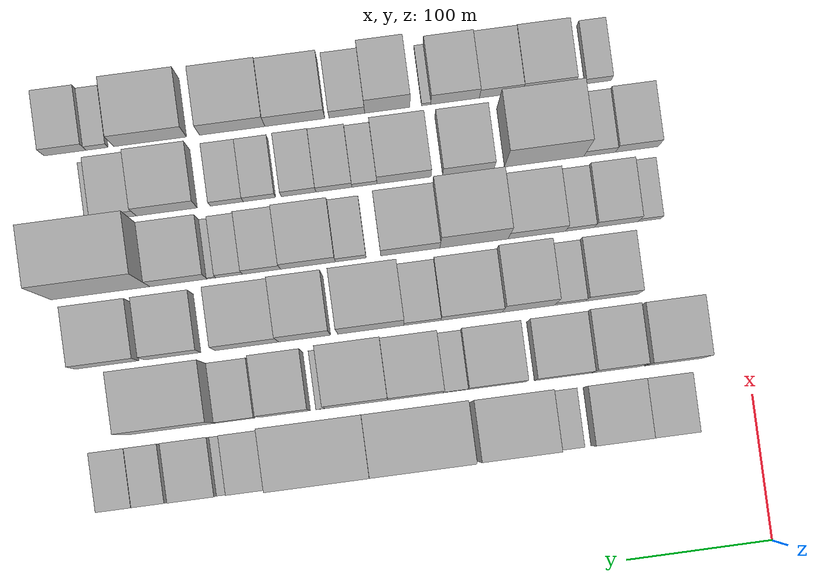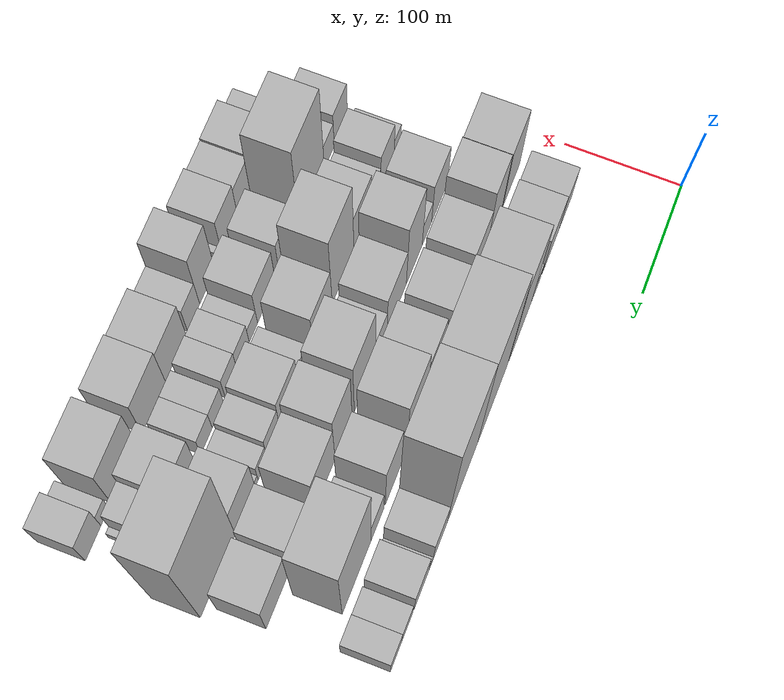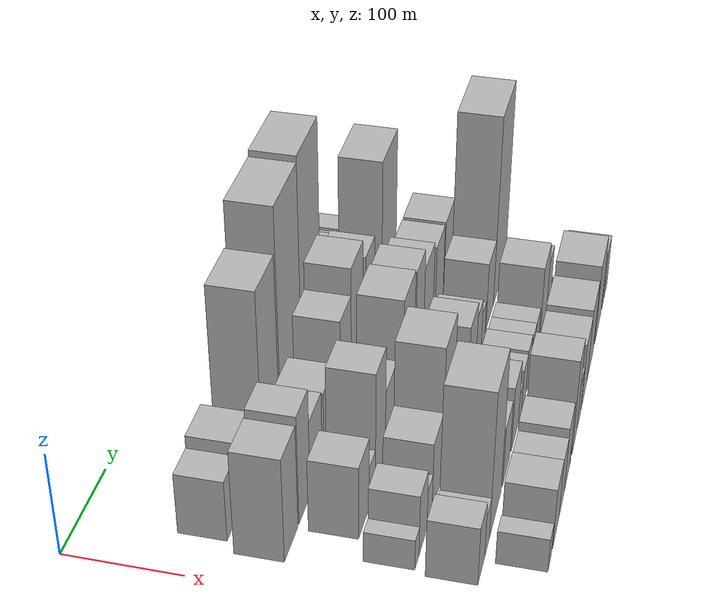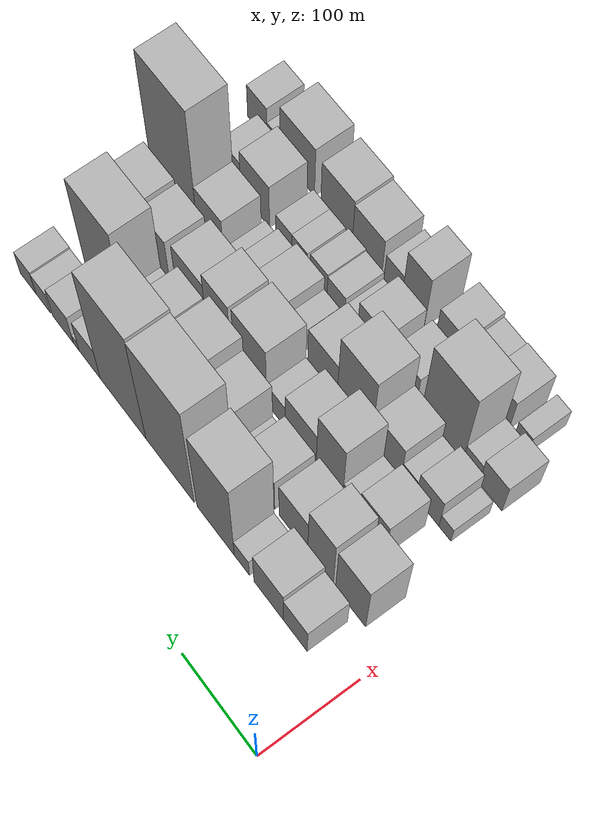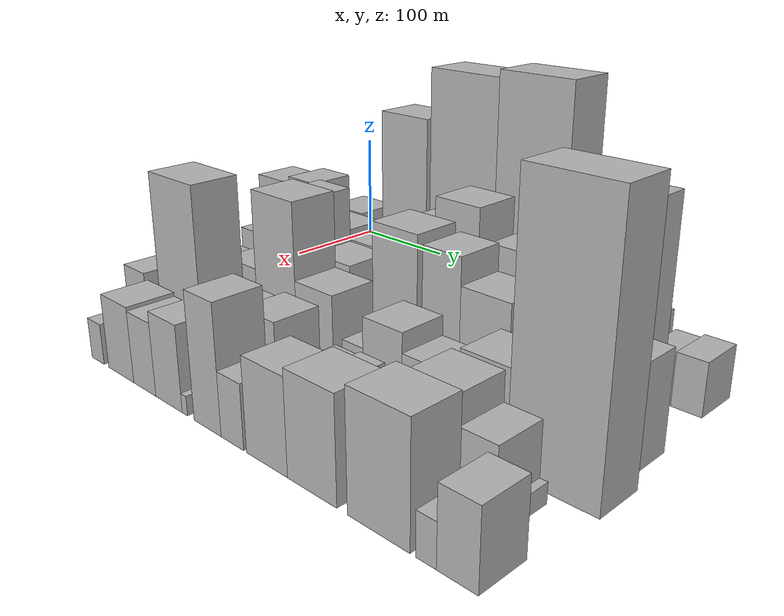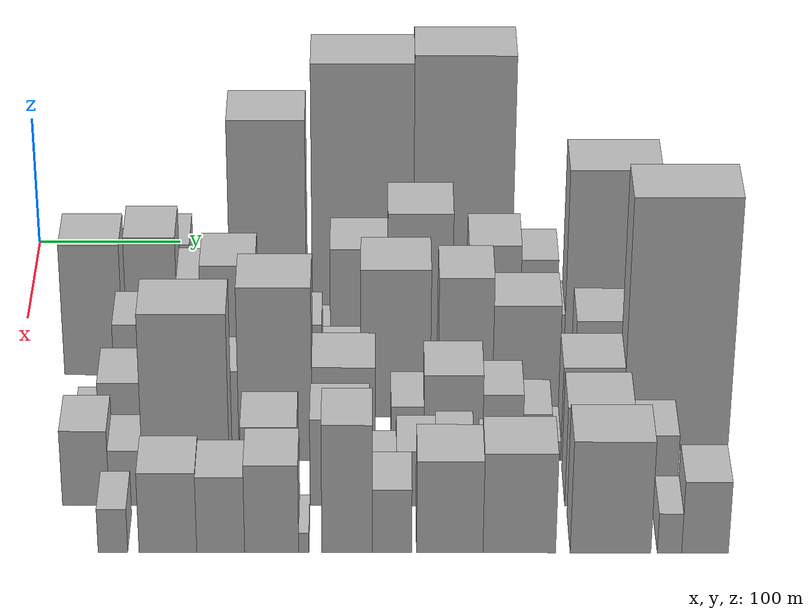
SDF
<sdf version="1.6">
 <world name="default">
  <model name="building_22">
   <static>1</static>
   <pose>100.0000 58.4036 0 0.000000 0.000000 0.000000</pose>
   <link name="link">
    <pose>0 0 30.00 0 0 0</pose>
    <collision name="collision"><geometry><box><size>40.0000 31.4197 60.0000</size></box></geometry></collision>
    <visual name="visual">
     <cast_shadows>0</cast_shadows>
     <geometry><box><size>40.0000 31.4197 60.0000</size></box></geometry>
     <material>
      <script>
       <uri>model://HANNAS_wall/materials/scripts</uri>
       <uri>model://HANNAS_wall/materials/textures</uri>
       <name>vrc/HANNAS_wall</name>
      </script>
     </material>
    </visual>
   </link>
  </model>
  <model name="building_23">
   <static>1</static>
   <pose>100.0000 93.8750 0 0.000000 0.000000 0.000000</pose>
   <link name="link">
    <pose>0 0 36.00 0 0 0</pose>
    <collision name="collision"><geometry><box><size>40.0000 39.5232 72.0000</size></box></geometry></collision>
    <visual name="visual">
     <cast_shadows>0</cast_shadows>
     <geometry><box><size>40.0000 39.5232 72.0000</size></box></geometry>
     <material>
      <script>
       <uri>model://HANNAS_wall/materials/scripts</uri>
       <uri>model://HANNAS_wall/materials/textures</uri>
       <name>vrc/HANNAS_wall</name>
      </script>
     </material>
    </visual>
   </link>
  </model>
  <model name="building_24">
   <static>1</static>
   <pose>100.0000 129.8729 0 0.000000 0.000000 0.000000</pose>
   <link name="link">
    <pose>0 0 19.50 0 0 0</pose>
    <collision name="collision"><geometry><box><size>40.0000 20.4726 39.0000</size></box></geometry></collision>
    <visual name="visual">
     <cast_shadows>0</cast_shadows>
     <geometry><box><size>40.0000 20.4726 39.0000</size></box></geometry>
     <material>
      <script>
       <uri>model://HANNAS_wall/materials/scripts</uri>
       <uri>model://HANNAS_wall/materials/textures</uri>
       <name>vrc/HANNAS_wall</name>
      </script>
     </material>
    </visual>
   </link>
  </model>
  <model name="building_25">
   <static>1</static>
   <pose>100.0000 165.9159 0 0.000000 0.000000 0.000000</pose>
   <link name="link">
    <pose>0 0 84.00 0 0 0</pose>
    <collision name="collision"><geometry><box><size>40.0000 51.6133 168.0000</size></box></geometry></collision>
    <visual name="visual">
     <cast_shadows>0</cast_shadows>
     <geometry><box><size>40.0000 51.6133 168.0000</size></box></geometry>
     <material>
      <script>
       <uri>model://HANNAS_wall/materials/scripts</uri>
       <uri>model://HANNAS_wall/materials/textures</uri>
       <name>vrc/HANNAS_wall</name>
      </script>
     </material>
    </visual>
   </link>
  </model>
  <model name="building_26">
   <static>1</static>
   <pose>100.0000 229.7220 0 0.000000 0.000000 0.000000</pose>
   <link name="link">
    <pose>0 0 105.00 0 0 0</pose>
    <collision name="collision"><geometry><box><size>40.0000 67.9990 210.0000</size></box></geometry></collision>
    <visual name="visual">
     <cast_shadows>0</cast_shadows>
     <geometry><box><size>40.0000 67.9990 210.0000</size></box></geometry>
     <material>
      <script>
       <uri>model://HANNAS_wall/materials/scripts</uri>
       <uri>model://HANNAS_wall/materials/textures</uri>
       <name>vrc/HANNAS_wall</name>
      </script>
     </material>
    </visual>
   </link>
  </model>
  <model name="building_27">
   <static>1</static>
   <pose>100.0000 296.9194 0 0.000000 0.000000 0.000000</pose>
   <link name="link">
    <pose>0 0 108.00 0 0 0</pose>
    <collision name="collision"><geometry><box><size>40.0000 66.3957 216.0000</size></box></geometry></collision>
    <visual name="visual">
     <cast_shadows>0</cast_shadows>
     <geometry><box><size>40.0000 66.3957 216.0000</size></box></geometry>
     <material>
      <script>
       <uri>model://HANNAS_wall/materials/scripts</uri>
       <uri>model://HANNAS_wall/materials/textures</uri>
       <name>vrc/HANNAS_wall</name>
      </script>
     </material>
    </visual>
   </link>
  </model>
  <model name="building_28">
   <static>1</static>
   <pose>100.0000 345.7990 0 0.000000 0.000000 0.000000</pose>
   <link name="link">
    <pose>0 0 30.00 0 0 0</pose>
    <collision name="collision"><geometry><box><size>40.0000 31.3636 60.0000</size></box></geometry></collision>
    <visual name="visual">
     <cast_shadows>0</cast_shadows>
     <geometry><box><size>40.0000 31.3636 60.0000</size></box></geometry>
     <material>
      <script>
       <uri>model://HANNAS_wall/materials/scripts</uri>
       <uri>model://HANNAS_wall/materials/textures</uri>
       <name>vrc/HANNAS_wall</name>
      </script>
     </material>
    </visual>
   </link>
  </model>
  <model name="building_29">
   <static>1</static>
   <pose>100.0000 365.5099 0 0.000000 0.000000 0.000000</pose>
   <link name="link">
    <pose>0 0 9.00 0 0 0</pose>
    <collision name="collision"><geometry><box><size>40.0000 8.0583 18.0000</size></box></geometry></collision>
    <visual name="visual">
     <cast_shadows>0</cast_shadows>
     <geometry><box><size>40.0000 8.0583 18.0000</size></box></geometry>
     <material>
      <script>
       <uri>model://HANNAS_wall/materials/scripts</uri>
       <uri>model://HANNAS_wall/materials/textures</uri>
       <name>vrc/HANNAS_wall</name>
      </script>
     </material>
    </visual>
   </link>
  </model>
  <model name="building_30">
   <static>1</static>
   <pose>100.0000 385.2607 0 0.000000 0.000000 0.000000</pose>
   <link name="link">
    <pose>0 0 27.00 0 0 0</pose>
    <collision name="collision"><geometry><box><size>40.0000 31.4432 54.0000</size></box></geometry></collision>
    <visual name="visual">
     <cast_shadows>0</cast_shadows>
     <geometry><box><size>40.0000 31.4432 54.0000</size></box></geometry>
     <material>
      <script>
       <uri>model://HANNAS_wall/materials/scripts</uri>
       <uri>model://HANNAS_wall/materials/textures</uri>
       <name>vrc/HANNAS_wall</name>
      </script>
     </material>
    </visual>
   </link>
  </model>
  <model name="building_31">
   <static>1</static>
   <pose>100.0000 415.1089 0 0.000000 0.000000 0.000000</pose>
   <link name="link">
    <pose>0 0 19.50 0 0 0</pose>
    <collision name="collision"><geometry><box><size>40.0000 22.2534 39.0000</size></box></geometry></collision>
    <visual name="visual">
     <cast_shadows>0</cast_shadows>
     <geometry><box><size>40.0000 22.2534 39.0000</size></box></geometry>
     <material>
      <script>
       <uri>model://HANNAS_wall/materials/scripts</uri>
       <uri>model://HANNAS_wall/materials/textures</uri>
       <name>vrc/HANNAS_wall</name>
      </script>
     </material>
    </visual>
   </link>
  </model>
  <model name="building_32">
   <static>1</static>
   <pose>100.0000 438.1735 0 0.000000 0.000000 0.000000</pose>
   <link name="link">
    <pose>0 0 21.00 0 0 0</pose>
    <collision name="collision"><geometry><box><size>40.0000 23.8757 42.0000</size></box></geometry></collision>
    <visual name="visual">
     <cast_shadows>0</cast_shadows>
     <geometry><box><size>40.0000 23.8757 42.0000</size></box></geometry>
     <material>
      <script>
       <uri>model://HANNAS_wall/materials/scripts</uri>
       <uri>model://HANNAS_wall/materials/textures</uri>
       <name>vrc/HANNAS_wall</name>
      </script>
     </material>
    </visual>
   </link>
  </model>
  <model name="building_67">
   <static>1</static>
   <pose>149.0000 50.6303 0 0.000000 0.000000 0.000000</pose>
   <link name="link">
    <pose>0 0 51.00 0 0 0</pose>
    <collision name="collision"><geometry><box><size>40.0000 39.5652 102.0000</size></box></geometry></collision>
    <visual name="visual">
     <cast_shadows>0</cast_shadows>
     <geometry><box><size>40.0000 39.5652 102.0000</size></box></geometry>
     <material>
      <script>
       <uri>model://HANNAS_wall/materials/scripts</uri>
       <uri>model://HANNAS_wall/materials/textures</uri>
       <name>vrc/HANNAS_wall</name>
      </script>
     </material>
    </visual>
   </link>
  </model>
  <model name="building_68">
   <static>1</static>
   <pose>149.0000 90.3499 0 0.000000 0.000000 0.000000</pose>
   <link name="link">
    <pose>0 0 54.00 0 0 0</pose>
    <collision name="collision"><geometry><box><size>40.0000 33.8740 108.0000</size></box></geometry></collision>
    <visual name="visual">
     <cast_shadows>0</cast_shadows>
     <geometry><box><size>40.0000 33.8740 108.0000</size></box></geometry>
     <material>
      <script>
       <uri>model://HANNAS_wall/materials/scripts</uri>
       <uri>model://HANNAS_wall/materials/textures</uri>
       <name>vrc/HANNAS_wall</name>
      </script>
     </material>
    </visual>
   </link>
  </model>
  <model name="building_69">
   <static>1</static>
   <pose>149.0000 126.5939 0 0.000000 0.000000 0.000000</pose>
   <link name="link">
    <pose>0 0 37.50 0 0 0</pose>
    <collision name="collision"><geometry><box><size>40.0000 38.6140 75.0000</size></box></geometry></collision>
    <visual name="visual">
     <cast_shadows>0</cast_shadows>
     <geometry><box><size>40.0000 38.6140 75.0000</size></box></geometry>
     <material>
      <script>
       <uri>model://HANNAS_wall/materials/scripts</uri>
       <uri>model://HANNAS_wall/materials/textures</uri>
       <name>vrc/HANNAS_wall</name>
      </script>
     </material>
    </visual>
   </link>
  </model>
  <model name="building_70">
   <static>1</static>
   <pose>149.0000 171.7424 0 0.000000 0.000000 0.000000</pose>
   <link name="link">
    <pose>0 0 34.50 0 0 0</pose>
    <collision name="collision"><geometry><box><size>40.0000 39.6831 69.0000</size></box></geometry></collision>
    <visual name="visual">
     <cast_shadows>0</cast_shadows>
     <geometry><box><size>40.0000 39.6831 69.0000</size></box></geometry>
     <material>
      <script>
       <uri>model://HANNAS_wall/materials/scripts</uri>
       <uri>model://HANNAS_wall/materials/textures</uri>
       <name>vrc/HANNAS_wall</name>
      </script>
     </material>
    </visual>
   </link>
  </model>
  <model name="building_71">
   <static>1</static>
   <pose>149.0000 200.0112 0 0.000000 0.000000 0.000000</pose>
   <link name="link">
    <pose>0 0 15.00 0 0 0</pose>
    <collision name="collision"><geometry><box><size>40.0000 16.8546 30.0000</size></box></geometry></collision>
    <visual name="visual">
     <cast_shadows>0</cast_shadows>
     <geometry><box><size>40.0000 16.8546 30.0000</size></box></geometry>
     <material>
      <script>
       <uri>model://HANNAS_wall/materials/scripts</uri>
       <uri>model://HANNAS_wall/materials/textures</uri>
       <name>vrc/HANNAS_wall</name>
      </script>
     </material>
    </visual>
   </link>
  </model>
  <model name="building_72">
   <static>1</static>
   <pose>149.0000 227.3875 0 0.000000 0.000000 0.000000</pose>
   <link name="link">
    <pose>0 0 49.50 0 0 0</pose>
    <collision name="collision"><geometry><box><size>40.0000 37.8979 99.0000</size></box></geometry></collision>
    <visual name="visual">
     <cast_shadows>0</cast_shadows>
     <geometry><box><size>40.0000 37.8979 99.0000</size></box></geometry>
     <material>
      <script>
       <uri>model://HANNAS_wall/materials/scripts</uri>
       <uri>model://HANNAS_wall/materials/textures</uri>
       <name>vrc/HANNAS_wall</name>
      </script>
     </material>
    </visual>
   </link>
  </model>
  <model name="building_73">
   <static>1</static>
   <pose>149.0000 267.7752 0 0.000000 0.000000 0.000000</pose>
   <link name="link">
    <pose>0 0 63.00 0 0 0</pose>
    <collision name="collision"><geometry><box><size>40.0000 42.8776 126.0000</size></box></geometry></collision>
    <visual name="visual">
     <cast_shadows>0</cast_shadows>
     <geometry><box><size>40.0000 42.8776 126.0000</size></box></geometry>
     <material>
      <script>
       <uri>model://HANNAS_wall/materials/scripts</uri>
       <uri>model://HANNAS_wall/materials/textures</uri>
       <name>vrc/HANNAS_wall</name>
      </script>
     </material>
    </visual>
   </link>
  </model>
  <model name="building_74">
   <static>1</static>
   <pose>149.0000 292.3675 0 0.000000 0.000000 0.000000</pose>
   <link name="link">
    <pose>0 0 7.50 0 0 0</pose>
    <collision name="collision"><geometry><box><size>40.0000 6.3072 15.0000</size></box></geometry></collision>
    <visual name="visual">
     <cast_shadows>0</cast_shadows>
     <geometry><box><size>40.0000 6.3072 15.0000</size></box></geometry>
     <material>
      <script>
       <uri>model://HANNAS_wall/materials/scripts</uri>
       <uri>model://HANNAS_wall/materials/textures</uri>
       <name>vrc/HANNAS_wall</name>
      </script>
     </material>
    </visual>
   </link>
  </model>
  <model name="building_75">
   <static>1</static>
   <pose>149.0000 316.7669 0 0.000000 0.000000 0.000000</pose>
   <link name="link">
    <pose>0 0 51.00 0 0 0</pose>
    <collision name="collision"><geometry><box><size>40.0000 34.4916 102.0000</size></box></geometry></collision>
    <visual name="visual">
     <cast_shadows>0</cast_shadows>
     <geometry><box><size>40.0000 34.4916 102.0000</size></box></geometry>
     <material>
      <script>
       <uri>model://HANNAS_wall/materials/scripts</uri>
       <uri>model://HANNAS_wall/materials/textures</uri>
       <name>vrc/HANNAS_wall</name>
      </script>
     </material>
    </visual>
   </link>
  </model>
  <model name="building_76">
   <static>1</static>
   <pose>149.0000 350.3776 0 0.000000 0.000000 0.000000</pose>
   <link name="link">
    <pose>0 0 24.00 0 0 0</pose>
    <collision name="collision"><geometry><box><size>40.0000 26.7299 48.0000</size></box></geometry></collision>
    <visual name="visual">
     <cast_shadows>0</cast_shadows>
     <geometry><box><size>40.0000 26.7299 48.0000</size></box></geometry>
     <material>
      <script>
       <uri>model://HANNAS_wall/materials/scripts</uri>
       <uri>model://HANNAS_wall/materials/textures</uri>
       <name>vrc/HANNAS_wall</name>
      </script>
     </material>
    </visual>
   </link>
  </model>
  <model name="building_77">
   <static>1</static>
   <pose>149.0000 393.6172 0 0.000000 0.000000 0.000000</pose>
   <link name="link">
    <pose>0 0 79.50 0 0 0</pose>
    <collision name="collision"><geometry><box><size>40.0000 59.7492 159.0000</size></box></geometry></collision>
    <visual name="visual">
     <cast_shadows>0</cast_shadows>
     <geometry><box><size>40.0000 59.7492 159.0000</size></box></geometry>
     <material>
      <script>
       <uri>model://HANNAS_wall/materials/scripts</uri>
       <uri>model://HANNAS_wall/materials/textures</uri>
       <name>vrc/HANNAS_wall</name>
      </script>
     </material>
    </visual>
   </link>
  </model>
  <model name="building_110">
   <static>1</static>
   <pose>198.0000 86.2267 0 0.000000 0.000000 0.000000</pose>
   <link name="link">
    <pose>0 0 36.00 0 0 0</pose>
    <collision name="collision"><geometry><box><size>40.0000 36.2347 72.0000</size></box></geometry></collision>
    <visual name="visual">
     <cast_shadows>0</cast_shadows>
     <geometry><box><size>40.0000 36.2347 72.0000</size></box></geometry>
     <material>
      <script>
       <uri>model://HANNAS_wall/materials/scripts</uri>
       <uri>model://HANNAS_wall/materials/textures</uri>
       <name>vrc/HANNAS_wall</name>
      </script>
     </material>
    </visual>
   </link>
  </model>
  <model name="building_111">
   <static>1</static>
   <pose>198.0000 115.0011 0 0.000000 0.000000 0.000000</pose>
   <link name="link">
    <pose>0 0 21.00 0 0 0</pose>
    <collision name="collision"><geometry><box><size>40.0000 21.3140 42.0000</size></box></geometry></collision>
    <visual name="visual">
     <cast_shadows>0</cast_shadows>
     <geometry><box><size>40.0000 21.3140 42.0000</size></box></geometry>
     <material>
      <script>
       <uri>model://HANNAS_wall/materials/scripts</uri>
       <uri>model://HANNAS_wall/materials/textures</uri>
       <name>vrc/HANNAS_wall</name>
      </script>
     </material>
    </visual>
   </link>
  </model>
  <model name="building_112">
   <static>1</static>
   <pose>198.0000 143.4820 0 0.000000 0.000000 0.000000</pose>
   <link name="link">
    <pose>0 0 58.50 0 0 0</pose>
    <collision name="collision"><geometry><box><size>40.0000 35.6478 117.0000</size></box></geometry></collision>
    <visual name="visual">
     <cast_shadows>0</cast_shadows>
     <geometry><box><size>40.0000 35.6478 117.0000</size></box></geometry>
     <material>
      <script>
       <uri>model://HANNAS_wall/materials/scripts</uri>
       <uri>model://HANNAS_wall/materials/textures</uri>
       <name>vrc/HANNAS_wall</name>
      </script>
     </material>
    </visual>
   </link>
  </model>
  <model name="building_113">
   <static>1</static>
   <pose>198.0000 182.4246 0 0.000000 0.000000 0.000000</pose>
   <link name="link">
    <pose>0 0 36.00 0 0 0</pose>
    <collision name="collision"><geometry><box><size>40.0000 42.2373 72.0000</size></box></geometry></collision>
    <visual name="visual">
     <cast_shadows>0</cast_shadows>
     <geometry><box><size>40.0000 42.2373 72.0000</size></box></geometry>
     <material>
      <script>
       <uri>model://HANNAS_wall/materials/scripts</uri>
       <uri>model://HANNAS_wall/materials/textures</uri>
       <name>vrc/HANNAS_wall</name>
      </script>
     </material>
    </visual>
   </link>
  </model>
  <model name="building_114">
   <static>1</static>
   <pose>198.0000 216.1688 0 0.000000 0.000000 0.000000</pose>
   <link name="link">
    <pose>0 0 22.50 0 0 0</pose>
    <collision name="collision"><geometry><box><size>40.0000 25.2511 45.0000</size></box></geometry></collision>
    <visual name="visual">
     <cast_shadows>0</cast_shadows>
     <geometry><box><size>40.0000 25.2511 45.0000</size></box></geometry>
     <material>
      <script>
       <uri>model://HANNAS_wall/materials/scripts</uri>
       <uri>model://HANNAS_wall/materials/textures</uri>
       <name>vrc/HANNAS_wall</name>
      </script>
     </material>
    </visual>
   </link>
  </model>
  <model name="building_115">
   <static>1</static>
   <pose>198.0000 251.4838 0 0.000000 0.000000 0.000000</pose>
   <link name="link">
    <pose>0 0 57.00 0 0 0</pose>
    <collision name="collision"><geometry><box><size>40.0000 45.3789 114.0000</size></box></geometry></collision>
    <visual name="visual">
     <cast_shadows>0</cast_shadows>
     <geometry><box><size>40.0000 45.3789 114.0000</size></box></geometry>
     <material>
      <script>
       <uri>model://HANNAS_wall/materials/scripts</uri>
       <uri>model://HANNAS_wall/materials/textures</uri>
       <name>vrc/HANNAS_wall</name>
      </script>
     </material>
    </visual>
   </link>
  </model>
  <model name="building_116">
   <static>1</static>
   <pose>198.0000 296.9703 0 0.000000 0.000000 0.000000</pose>
   <link name="link">
    <pose>0 0 54.00 0 0 0</pose>
    <collision name="collision"><geometry><box><size>40.0000 35.5942 108.0000</size></box></geometry></collision>
    <visual name="visual">
     <cast_shadows>0</cast_shadows>
     <geometry><box><size>40.0000 35.5942 108.0000</size></box></geometry>
     <material>
      <script>
       <uri>model://HANNAS_wall/materials/scripts</uri>
       <uri>model://HANNAS_wall/materials/textures</uri>
       <name>vrc/HANNAS_wall</name>
      </script>
     </material>
    </visual>
   </link>
  </model>
  <model name="building_117">
   <static>1</static>
   <pose>198.0000 336.5184 0 0.000000 0.000000 0.000000</pose>
   <link name="link">
    <pose>0 0 43.50 0 0 0</pose>
    <collision name="collision"><geometry><box><size>40.0000 43.5019 87.0000</size></box></geometry></collision>
    <visual name="visual">
     <cast_shadows>0</cast_shadows>
     <geometry><box><size>40.0000 43.5019 87.0000</size></box></geometry>
     <material>
      <script>
       <uri>model://HANNAS_wall/materials/scripts</uri>
       <uri>model://HANNAS_wall/materials/textures</uri>
       <name>vrc/HANNAS_wall</name>
      </script>
     </material>
    </visual>
   </link>
  </model>
  <model name="building_118">
   <static>1</static>
   <pose>198.0000 387.4656 0 0.000000 0.000000 0.000000</pose>
   <link name="link">
    <pose>0 0 37.50 0 0 0</pose>
    <collision name="collision"><geometry><box><size>40.0000 38.3926 75.0000</size></box></geometry></collision>
    <visual name="visual">
     <cast_shadows>0</cast_shadows>
     <geometry><box><size>40.0000 38.3926 75.0000</size></box></geometry>
     <material>
      <script>
       <uri>model://HANNAS_wall/materials/scripts</uri>
       <uri>model://HANNAS_wall/materials/textures</uri>
       <name>vrc/HANNAS_wall</name>
      </script>
     </material>
    </visual>
   </link>
  </model>
  <model name="building_119">
   <static>1</static>
   <pose>198.0000 432.4780 0 0.000000 0.000000 0.000000</pose>
   <link name="link">
    <pose>0 0 37.50 0 0 0</pose>
    <collision name="collision"><geometry><box><size>40.0000 43.6322 75.0000</size></box></geometry></collision>
    <visual name="visual">
     <cast_shadows>0</cast_shadows>
     <geometry><box><size>40.0000 43.6322 75.0000</size></box></geometry>
     <material>
      <script>
       <uri>model://HANNAS_wall/materials/scripts</uri>
       <uri>model://HANNAS_wall/materials/textures</uri>
       <name>vrc/HANNAS_wall</name>
      </script>
     </material>
    </visual>
   </link>
  </model>
  <model name="building_156">
   <static>1</static>
   <pose>247.0000 53.3687 0 0.000000 0.000000 0.000000</pose>
   <link name="link">
    <pose>0 0 15.00 0 0 0</pose>
    <collision name="collision"><geometry><box><size>40.0000 15.6656 30.0000</size></box></geometry></collision>
    <visual name="visual">
     <cast_shadows>0</cast_shadows>
     <geometry><box><size>40.0000 15.6656 30.0000</size></box></geometry>
     <material>
      <script>
       <uri>model://HANNAS_wall/materials/scripts</uri>
       <uri>model://HANNAS_wall/materials/textures</uri>
       <name>vrc/HANNAS_wall</name>
      </script>
     </material>
    </visual>
   </link>
  </model>
  <model name="building_157">
   <static>1</static>
   <pose>247.0000 76.2522 0 0.000000 0.000000 0.000000</pose>
   <link name="link">
    <pose>0 0 30.00 0 0 0</pose>
    <collision name="collision"><geometry><box><size>40.0000 30.1015 60.0000</size></box></geometry></collision>
    <visual name="visual">
     <cast_shadows>0</cast_shadows>
     <geometry><box><size>40.0000 30.1015 60.0000</size></box></geometry>
     <material>
      <script>
       <uri>model://HANNAS_wall/materials/scripts</uri>
       <uri>model://HANNAS_wall/materials/textures</uri>
       <name>vrc/HANNAS_wall</name>
      </script>
     </material>
    </visual>
   </link>
  </model>
  <model name="building_158">
   <static>1</static>
   <pose>247.0000 101.3006 0 0.000000 0.000000 0.000000</pose>
   <link name="link">
    <pose>0 0 19.50 0 0 0</pose>
    <collision name="collision"><geometry><box><size>40.0000 19.9952 39.0000</size></box></geometry></collision>
    <visual name="visual">
     <cast_shadows>0</cast_shadows>
     <geometry><box><size>40.0000 19.9952 39.0000</size></box></geometry>
     <material>
      <script>
       <uri>model://HANNAS_wall/materials/scripts</uri>
       <uri>model://HANNAS_wall/materials/textures</uri>
       <name>vrc/HANNAS_wall</name>
      </script>
     </material>
    </visual>
   </link>
  </model>
  <model name="building_159">
   <static>1</static>
   <pose>247.0000 131.0246 0 0.000000 0.000000 0.000000</pose>
   <link name="link">
    <pose>0 0 34.50 0 0 0</pose>
    <collision name="collision"><geometry><box><size>40.0000 39.4528 69.0000</size></box></geometry></collision>
    <visual name="visual">
     <cast_shadows>0</cast_shadows>
     <geometry><box><size>40.0000 39.4528 69.0000</size></box></geometry>
     <material>
      <script>
       <uri>model://HANNAS_wall/materials/scripts</uri>
       <uri>model://HANNAS_wall/materials/textures</uri>
       <name>vrc/HANNAS_wall</name>
      </script>
     </material>
    </visual>
   </link>
  </model>
  <model name="building_160">
   <static>1</static>
   <pose>247.0000 174.2249 0 0.000000 0.000000 0.000000</pose>
   <link name="link">
    <pose>0 0 66.00 0 0 0</pose>
    <collision name="collision"><geometry><box><size>40.0000 46.9478 132.0000</size></box></geometry></collision>
    <visual name="visual">
     <cast_shadows>0</cast_shadows>
     <geometry><box><size>40.0000 46.9478 132.0000</size></box></geometry>
     <material>
      <script>
       <uri>model://HANNAS_wall/materials/scripts</uri>
       <uri>model://HANNAS_wall/materials/textures</uri>
       <name>vrc/HANNAS_wall</name>
      </script>
     </material>
    </visual>
   </link>
  </model>
  <model name="building_161">
   <static>1</static>
   <pose>247.0000 217.9643 0 0.000000 0.000000 0.000000</pose>
   <link name="link">
    <pose>0 0 36.00 0 0 0</pose>
    <collision name="collision"><geometry><box><size>40.0000 40.5310 72.0000</size></box></geometry></collision>
    <visual name="visual">
     <cast_shadows>0</cast_shadows>
     <geometry><box><size>40.0000 40.5310 72.0000</size></box></geometry>
     <material>
      <script>
       <uri>model://HANNAS_wall/materials/scripts</uri>
       <uri>model://HANNAS_wall/materials/textures</uri>
       <name>vrc/HANNAS_wall</name>
      </script>
     </material>
    </visual>
   </link>
  </model>
  <model name="building_162">
   <static>1</static>
   <pose>247.0000 258.7671 0 0.000000 0.000000 0.000000</pose>
   <link name="link">
    <pose>0 0 21.00 0 0 0</pose>
    <collision name="collision"><geometry><box><size>40.0000 21.0747 42.0000</size></box></geometry></collision>
    <visual name="visual">
     <cast_shadows>0</cast_shadows>
     <geometry><box><size>40.0000 21.0747 42.0000</size></box></geometry>
     <material>
      <script>
       <uri>model://HANNAS_wall/materials/scripts</uri>
       <uri>model://HANNAS_wall/materials/textures</uri>
       <name>vrc/HANNAS_wall</name>
      </script>
     </material>
    </visual>
   </link>
  </model>
  <model name="building_163">
   <static>1</static>
   <pose>247.0000 288.2069 0 0.000000 0.000000 0.000000</pose>
   <link name="link">
    <pose>0 0 33.00 0 0 0</pose>
    <collision name="collision"><geometry><box><size>40.0000 37.8048 66.0000</size></box></geometry></collision>
    <visual name="visual">
     <cast_shadows>0</cast_shadows>
     <geometry><box><size>40.0000 37.8048 66.0000</size></box></geometry>
     <material>
      <script>
       <uri>model://HANNAS_wall/materials/scripts</uri>
       <uri>model://HANNAS_wall/materials/textures</uri>
       <name>vrc/HANNAS_wall</name>
      </script>
     </material>
    </visual>
   </link>
  </model>
  <model name="building_164">
   <static>1</static>
   <pose>247.0000 320.0521 0 0.000000 0.000000 0.000000</pose>
   <link name="link">
    <pose>0 0 25.50 0 0 0</pose>
    <collision name="collision"><geometry><box><size>40.0000 25.8857 51.0000</size></box></geometry></collision>
    <visual name="visual">
     <cast_shadows>0</cast_shadows>
     <geometry><box><size>40.0000 25.8857 51.0000</size></box></geometry>
     <material>
      <script>
       <uri>model://HANNAS_wall/materials/scripts</uri>
       <uri>model://HANNAS_wall/materials/textures</uri>
       <name>vrc/HANNAS_wall</name>
      </script>
     </material>
    </visual>
   </link>
  </model>
  <model name="building_165">
   <static>1</static>
   <pose>247.0000 342.1970 0 0.000000 0.000000 0.000000</pose>
   <link name="link">
    <pose>0 0 18.00 0 0 0</pose>
    <collision name="collision"><geometry><box><size>40.0000 18.4039 36.0000</size></box></geometry></collision>
    <visual name="visual">
     <cast_shadows>0</cast_shadows>
     <geometry><box><size>40.0000 18.4039 36.0000</size></box></geometry>
     <material>
      <script>
       <uri>model://HANNAS_wall/materials/scripts</uri>
       <uri>model://HANNAS_wall/materials/textures</uri>
       <name>vrc/HANNAS_wall</name>
      </script>
     </material>
    </visual>
   </link>
  </model>
  <model name="building_166">
   <static>1</static>
   <pose>247.0000 354.4137 0 0.000000 0.000000 0.000000</pose>
   <link name="link">
    <pose>0 0 7.50 0 0 0</pose>
    <collision name="collision"><geometry><box><size>40.0000 6.0296 15.0000</size></box></geometry></collision>
    <visual name="visual">
     <cast_shadows>0</cast_shadows>
     <geometry><box><size>40.0000 6.0296 15.0000</size></box></geometry>
     <material>
      <script>
       <uri>model://HANNAS_wall/materials/scripts</uri>
       <uri>model://HANNAS_wall/materials/textures</uri>
       <name>vrc/HANNAS_wall</name>
      </script>
     </material>
    </visual>
   </link>
  </model>
  <model name="building_167">
   <static>1</static>
   <pose>247.0000 377.1219 0 0.000000 0.000000 0.000000</pose>
   <link name="link">
    <pose>0 0 36.00 0 0 0</pose>
    <collision name="collision"><geometry><box><size>40.0000 39.3866 72.0000</size></box></geometry></collision>
    <visual name="visual">
     <cast_shadows>0</cast_shadows>
     <geometry><box><size>40.0000 39.3866 72.0000</size></box></geometry>
     <material>
      <script>
       <uri>model://HANNAS_wall/materials/scripts</uri>
       <uri>model://HANNAS_wall/materials/textures</uri>
       <name>vrc/HANNAS_wall</name>
      </script>
     </material>
    </visual>
   </link>
  </model>
  <model name="building_168">
   <static>1</static>
   <pose>247.0000 430.7043 0 0.000000 0.000000 0.000000</pose>
   <link name="link">
    <pose>0 0 99.00 0 0 0</pose>
    <collision name="collision"><geometry><box><size>40.0000 67.7782 198.0000</size></box></geometry></collision>
    <visual name="visual">
     <cast_shadows>0</cast_shadows>
     <geometry><box><size>40.0000 67.7782 198.0000</size></box></geometry>
     <material>
      <script>
       <uri>model://HANNAS_wall/materials/scripts</uri>
       <uri>model://HANNAS_wall/materials/textures</uri>
       <name>vrc/HANNAS_wall</name>
      </script>
     </material>
    </visual>
   </link>
  </model>
  <model name="building_205">
   <static>1</static>
   <pose>296.0000 55.5657 0 0.000000 0.000000 0.000000</pose>
   <link name="link">
    <pose>0 0 28.50 0 0 0</pose>
    <collision name="collision"><geometry><box><size>40.0000 29.5504 57.0000</size></box></geometry></collision>
    <visual name="visual">
     <cast_shadows>0</cast_shadows>
     <geometry><box><size>40.0000 29.5504 57.0000</size></box></geometry>
     <material>
      <script>
       <uri>model://HANNAS_wall/materials/scripts</uri>
       <uri>model://HANNAS_wall/materials/textures</uri>
       <name>vrc/HANNAS_wall</name>
      </script>
     </material>
    </visual>
   </link>
  </model>
  <model name="building_206">
   <static>1</static>
   <pose>296.0000 81.1973 0 0.000000 0.000000 0.000000</pose>
   <link name="link">
    <pose>0 0 21.00 0 0 0</pose>
    <collision name="collision"><geometry><box><size>40.0000 21.7128 42.0000</size></box></geometry></collision>
    <visual name="visual">
     <cast_shadows>0</cast_shadows>
     <geometry><box><size>40.0000 21.7128 42.0000</size></box></geometry>
     <material>
      <script>
       <uri>model://HANNAS_wall/materials/scripts</uri>
       <uri>model://HANNAS_wall/materials/textures</uri>
       <name>vrc/HANNAS_wall</name>
      </script>
     </material>
    </visual>
   </link>
  </model>
  <model name="building_207">
   <static>1</static>
   <pose>296.0000 119.3716 0 0.000000 0.000000 0.000000</pose>
   <link name="link">
    <pose>0 0 72.00 0 0 0</pose>
    <collision name="collision"><geometry><box><size>40.0000 54.6359 144.0000</size></box></geometry></collision>
    <visual name="visual">
     <cast_shadows>0</cast_shadows>
     <geometry><box><size>40.0000 54.6359 144.0000</size></box></geometry>
     <material>
      <script>
       <uri>model://HANNAS_wall/materials/scripts</uri>
       <uri>model://HANNAS_wall/materials/textures</uri>
       <name>vrc/HANNAS_wall</name>
      </script>
     </material>
    </visual>
   </link>
  </model>
  <model name="building_208">
   <static>1</static>
   <pose>296.0000 171.4354 0 0.000000 0.000000 0.000000</pose>
   <link name="link">
    <pose>0 0 30.00 0 0 0</pose>
    <collision name="collision"><geometry><box><size>40.0000 35.4918 60.0000</size></box></geometry></collision>
    <visual name="visual">
     <cast_shadows>0</cast_shadows>
     <geometry><box><size>40.0000 35.4918 60.0000</size></box></geometry>
     <material>
      <script>
       <uri>model://HANNAS_wall/materials/scripts</uri>
       <uri>model://HANNAS_wall/materials/textures</uri>
       <name>vrc/HANNAS_wall</name>
      </script>
     </material>
    </visual>
   </link>
  </model>
  <model name="building_209">
   <static>1</static>
   <pose>296.0000 215.7584 0 0.000000 0.000000 0.000000</pose>
   <link name="link">
    <pose>0 0 33.00 0 0 0</pose>
    <collision name="collision"><geometry><box><size>40.0000 37.1543 66.0000</size></box></geometry></collision>
    <visual name="visual">
     <cast_shadows>0</cast_shadows>
     <geometry><box><size>40.0000 37.1543 66.0000</size></box></geometry>
     <material>
      <script>
       <uri>model://HANNAS_wall/materials/scripts</uri>
       <uri>model://HANNAS_wall/materials/textures</uri>
       <name>vrc/HANNAS_wall</name>
      </script>
     </material>
    </visual>
   </link>
  </model>
  <model name="building_210">
   <static>1</static>
   <pose>296.0000 242.9246 0 0.000000 0.000000 0.000000</pose>
   <link name="link">
    <pose>0 0 15.00 0 0 0</pose>
    <collision name="collision"><geometry><box><size>40.0000 17.1780 30.0000</size></box></geometry></collision>
    <visual name="visual">
     <cast_shadows>0</cast_shadows>
     <geometry><box><size>40.0000 17.1780 30.0000</size></box></geometry>
     <material>
      <script>
       <uri>model://HANNAS_wall/materials/scripts</uri>
       <uri>model://HANNAS_wall/materials/textures</uri>
       <name>vrc/HANNAS_wall</name>
      </script>
     </material>
    </visual>
   </link>
  </model>
  <model name="building_211">
   <static>1</static>
   <pose>296.0000 263.8848 0 0.000000 0.000000 0.000000</pose>
   <link name="link">
    <pose>0 0 21.00 0 0 0</pose>
    <collision name="collision"><geometry><box><size>40.0000 24.7422 42.0000</size></box></geometry></collision>
    <visual name="visual">
     <cast_shadows>0</cast_shadows>
     <geometry><box><size>40.0000 24.7422 42.0000</size></box></geometry>
     <material>
      <script>
       <uri>model://HANNAS_wall/materials/scripts</uri>
       <uri>model://HANNAS_wall/materials/textures</uri>
       <name>vrc/HANNAS_wall</name>
      </script>
     </material>
    </visual>
   </link>
  </model>
  <model name="building_212">
   <static>1</static>
   <pose>296.0000 288.1424 0 0.000000 0.000000 0.000000</pose>
   <link name="link">
    <pose>0 0 22.50 0 0 0</pose>
    <collision name="collision"><geometry><box><size>40.0000 23.7730 45.0000</size></box></geometry></collision>
    <visual name="visual">
     <cast_shadows>0</cast_shadows>
     <geometry><box><size>40.0000 23.7730 45.0000</size></box></geometry>
     <material>
      <script>
       <uri>model://HANNAS_wall/materials/scripts</uri>
       <uri>model://HANNAS_wall/materials/textures</uri>
       <name>vrc/HANNAS_wall</name>
      </script>
     </material>
    </visual>
   </link>
  </model>
  <model name="building_213">
   <static>1</static>
   <pose>296.0000 315.1286 0 0.000000 0.000000 0.000000</pose>
   <link name="link">
    <pose>0 0 19.50 0 0 0</pose>
    <collision name="collision"><geometry><box><size>40.0000 22.1994 39.0000</size></box></geometry></collision>
    <visual name="visual">
     <cast_shadows>0</cast_shadows>
     <geometry><box><size>40.0000 22.1994 39.0000</size></box></geometry>
     <material>
      <script>
       <uri>model://HANNAS_wall/materials/scripts</uri>
       <uri>model://HANNAS_wall/materials/textures</uri>
       <name>vrc/HANNAS_wall</name>
      </script>
     </material>
    </visual>
   </link>
  </model>
  <model name="building_214">
   <static>1</static>
   <pose>296.0000 337.5310 0 0.000000 0.000000 0.000000</pose>
   <link name="link">
    <pose>0 0 19.50 0 0 0</pose>
    <collision name="collision"><geometry><box><size>40.0000 22.6056 39.0000</size></box></geometry></collision>
    <visual name="visual">
     <cast_shadows>0</cast_shadows>
     <geometry><box><size>40.0000 22.6056 39.0000</size></box></geometry>
     <material>
      <script>
       <uri>model://HANNAS_wall/materials/scripts</uri>
       <uri>model://HANNAS_wall/materials/textures</uri>
       <name>vrc/HANNAS_wall</name>
      </script>
     </material>
    </visual>
   </link>
  </model>
  <model name="building_215">
   <static>1</static>
   <pose>296.0000 378.7425 0 0.000000 0.000000 0.000000</pose>
   <link name="link">
    <pose>0 0 37.50 0 0 0</pose>
    <collision name="collision"><geometry><box><size>40.0000 41.8173 75.0000</size></box></geometry></collision>
    <visual name="visual">
     <cast_shadows>0</cast_shadows>
     <geometry><box><size>40.0000 41.8173 75.0000</size></box></geometry>
     <material>
      <script>
       <uri>model://HANNAS_wall/materials/scripts</uri>
       <uri>model://HANNAS_wall/materials/textures</uri>
       <name>vrc/HANNAS_wall</name>
      </script>
     </material>
    </visual>
   </link>
  </model>
  <model name="building_216">
   <static>1</static>
   <pose>296.0000 413.8675 0 0.000000 0.000000 0.000000</pose>
   <link name="link">
    <pose>0 0 27.00 0 0 0</pose>
    <collision name="collision"><geometry><box><size>40.0000 28.4329 54.0000</size></box></geometry></collision>
    <visual name="visual">
     <cast_shadows>0</cast_shadows>
     <geometry><box><size>40.0000 28.4329 54.0000</size></box></geometry>
     <material>
      <script>
       <uri>model://HANNAS_wall/materials/scripts</uri>
       <uri>model://HANNAS_wall/materials/textures</uri>
       <name>vrc/HANNAS_wall</name>
      </script>
     </material>
    </visual>
   </link>
  </model>
  <model name="building_217">
   <static>1</static>
   <pose>296.0000 431.0996 0 0.000000 0.000000 0.000000</pose>
   <link name="link">
    <pose>0 0 7.50 0 0 0</pose>
    <collision name="collision"><geometry><box><size>40.0000 6.0312 15.0000</size></box></geometry></collision>
    <visual name="visual">
     <cast_shadows>0</cast_shadows>
     <geometry><box><size>40.0000 6.0312 15.0000</size></box></geometry>
     <material>
      <script>
       <uri>model://HANNAS_wall/materials/scripts</uri>
       <uri>model://HANNAS_wall/materials/textures</uri>
       <name>vrc/HANNAS_wall</name>
      </script>
     </material>
    </visual>
   </link>
  </model>
  <model name="building_258">
   <static>1</static>
   <pose>345.0000 75.7708 0 0.000000 0.000000 0.000000</pose>
   <link name="link">
    <pose>0 0 16.50 0 0 0</pose>
    <collision name="collision"><geometry><box><size>40.0000 18.2970 33.0000</size></box></geometry></collision>
    <visual name="visual">
     <cast_shadows>0</cast_shadows>
     <geometry><box><size>40.0000 18.2970 33.0000</size></box></geometry>
     <material>
      <script>
       <uri>model://HANNAS_wall/materials/scripts</uri>
       <uri>model://HANNAS_wall/materials/textures</uri>
       <name>vrc/HANNAS_wall</name>
      </script>
     </material>
    </visual>
   </link>
  </model>
  <model name="building_259">
   <static>1</static>
   <pose>345.0000 109.8109 0 0.000000 0.000000 0.000000</pose>
   <link name="link">
    <pose>0 0 30.00 0 0 0</pose>
    <collision name="collision"><geometry><box><size>40.0000 35.7831 60.0000</size></box></geometry></collision>
    <visual name="visual">
     <cast_shadows>0</cast_shadows>
     <geometry><box><size>40.0000 35.7831 60.0000</size></box></geometry>
     <material>
      <script>
       <uri>model://HANNAS_wall/materials/scripts</uri>
       <uri>model://HANNAS_wall/materials/textures</uri>
       <name>vrc/HANNAS_wall</name>
      </script>
     </material>
    </visual>
   </link>
  </model>
  <model name="building_260">
   <static>1</static>
   <pose>345.0000 142.5376 0 0.000000 0.000000 0.000000</pose>
   <link name="link">
    <pose>0 0 28.50 0 0 0</pose>
    <collision name="collision"><geometry><box><size>40.0000 29.6703 57.0000</size></box></geometry></collision>
    <visual name="visual">
     <cast_shadows>0</cast_shadows>
     <geometry><box><size>40.0000 29.6703 57.0000</size></box></geometry>
     <material>
      <script>
       <uri>model://HANNAS_wall/materials/scripts</uri>
       <uri>model://HANNAS_wall/materials/textures</uri>
       <name>vrc/HANNAS_wall</name>
      </script>
     </material>
    </visual>
   </link>
  </model>
  <model name="building_261">
   <static>1</static>
   <pose>345.0000 174.0992 0 0.000000 0.000000 0.000000</pose>
   <link name="link">
    <pose>0 0 33.00 0 0 0</pose>
    <collision name="collision"><geometry><box><size>40.0000 33.4529 66.0000</size></box></geometry></collision>
    <visual name="visual">
     <cast_shadows>0</cast_shadows>
     <geometry><box><size>40.0000 33.4529 66.0000</size></box></geometry>
     <material>
      <script>
       <uri>model://HANNAS_wall/materials/scripts</uri>
       <uri>model://HANNAS_wall/materials/textures</uri>
       <name>vrc/HANNAS_wall</name>
      </script>
     </material>
    </visual>
   </link>
  </model>
  <model name="building_262">
   <static>1</static>
   <pose>345.0000 193.9983 0 0.000000 0.000000 0.000000</pose>
   <link name="link">
    <pose>0 0 7.50 0 0 0</pose>
    <collision name="collision"><geometry><box><size>40.0000 6.3452 15.0000</size></box></geometry></collision>
    <visual name="visual">
     <cast_shadows>0</cast_shadows>
     <geometry><box><size>40.0000 6.3452 15.0000</size></box></geometry>
     <material>
      <script>
       <uri>model://HANNAS_wall/materials/scripts</uri>
       <uri>model://HANNAS_wall/materials/textures</uri>
       <name>vrc/HANNAS_wall</name>
      </script>
     </material>
    </visual>
   </link>
  </model>
  <model name="building_263">
   <static>1</static>
   <pose>345.0000 220.7179 0 0.000000 0.000000 0.000000</pose>
   <link name="link">
    <pose>0 0 48.00 0 0 0</pose>
    <collision name="collision"><geometry><box><size>40.0000 31.0940 96.0000</size></box></geometry></collision>
    <visual name="visual">
     <cast_shadows>0</cast_shadows>
     <geometry><box><size>40.0000 31.0940 96.0000</size></box></geometry>
     <material>
      <script>
       <uri>model://HANNAS_wall/materials/scripts</uri>
       <uri>model://HANNAS_wall/materials/textures</uri>
       <name>vrc/HANNAS_wall</name>
      </script>
     </material>
    </visual>
   </link>
  </model>
  <model name="building_264">
   <static>1</static>
   <pose>345.0000 248.5022 0 0.000000 0.000000 0.000000</pose>
   <link name="link">
    <pose>0 0 24.00 0 0 0</pose>
    <collision name="collision"><geometry><box><size>40.0000 24.4746 48.0000</size></box></geometry></collision>
    <visual name="visual">
     <cast_shadows>0</cast_shadows>
     <geometry><box><size>40.0000 24.4746 48.0000</size></box></geometry>
     <material>
      <script>
       <uri>model://HANNAS_wall/materials/scripts</uri>
       <uri>model://HANNAS_wall/materials/textures</uri>
       <name>vrc/HANNAS_wall</name>
      </script>
     </material>
    </visual>
   </link>
  </model>
  <model name="building_265">
   <static>1</static>
   <pose>345.0000 284.3279 0 0.000000 0.000000 0.000000</pose>
   <link name="link">
    <pose>0 0 34.50 0 0 0</pose>
    <collision name="collision"><geometry><box><size>40.0000 41.1768 69.0000</size></box></geometry></collision>
    <visual name="visual">
     <cast_shadows>0</cast_shadows>
     <geometry><box><size>40.0000 41.1768 69.0000</size></box></geometry>
     <material>
      <script>
       <uri>model://HANNAS_wall/materials/scripts</uri>
       <uri>model://HANNAS_wall/materials/textures</uri>
       <name>vrc/HANNAS_wall</name>
      </script>
     </material>
    </visual>
   </link>
  </model>
  <model name="building_266">
   <static>1</static>
   <pose>345.0000 327.3895 0 0.000000 0.000000 0.000000</pose>
   <link name="link">
    <pose>0 0 37.50 0 0 0</pose>
    <collision name="collision"><geometry><box><size>40.0000 44.9464 75.0000</size></box></geometry></collision>
    <visual name="visual">
     <cast_shadows>0</cast_shadows>
     <geometry><box><size>40.0000 44.9464 75.0000</size></box></geometry>
     <material>
      <script>
       <uri>model://HANNAS_wall/materials/scripts</uri>
       <uri>model://HANNAS_wall/materials/textures</uri>
       <name>vrc/HANNAS_wall</name>
      </script>
     </material>
    </visual>
   </link>
  </model>
  <model name="building_267">
   <static>1</static>
   <pose>345.0000 383.8452 0 0.000000 0.000000 0.000000</pose>
   <link name="link">
    <pose>0 0 42.00 0 0 0</pose>
    <collision name="collision"><geometry><box><size>40.0000 49.9649 84.0000</size></box></geometry></collision>
    <visual name="visual">
     <cast_shadows>0</cast_shadows>
     <geometry><box><size>40.0000 49.9649 84.0000</size></box></geometry>
     <material>
      <script>
       <uri>model://HANNAS_wall/materials/scripts</uri>
       <uri>model://HANNAS_wall/materials/textures</uri>
       <name>vrc/HANNAS_wall</name>
      </script>
     </material>
    </visual>
   </link>
  </model>
  <model name="building_268">
   <static>1</static>
   <pose>345.0000 420.3589 0 0.000000 0.000000 0.000000</pose>
   <link name="link">
    <pose>0 0 15.00 0 0 0</pose>
    <collision name="collision"><geometry><box><size>40.0000 15.0626 30.0000</size></box></geometry></collision>
    <visual name="visual">
     <cast_shadows>0</cast_shadows>
     <geometry><box><size>40.0000 15.0626 30.0000</size></box></geometry>
     <material>
      <script>
       <uri>model://HANNAS_wall/materials/scripts</uri>
       <uri>model://HANNAS_wall/materials/textures</uri>
       <name>vrc/HANNAS_wall</name>
      </script>
     </material>
    </visual>
   </link>
  </model>
  <model name="building_269">
   <static>1</static>
   <pose>345.0000 442.3562 0 0.000000 0.000000 0.000000</pose>
   <link name="link">
    <pose>0 0 27.00 0 0 0</pose>
    <collision name="collision"><geometry><box><size>40.0000 28.9319 54.0000</size></box></geometry></collision>
    <visual name="visual">
     <cast_shadows>0</cast_shadows>
     <geometry><box><size>40.0000 28.9319 54.0000</size></box></geometry>
     <material>
      <script>
       <uri>model://HANNAS_wall/materials/scripts</uri>
       <uri>model://HANNAS_wall/materials/textures</uri>
       <name>vrc/HANNAS_wall</name>
      </script>
     </material>
    </visual>
   </link>
  </model>
 </world>
</sdf>
